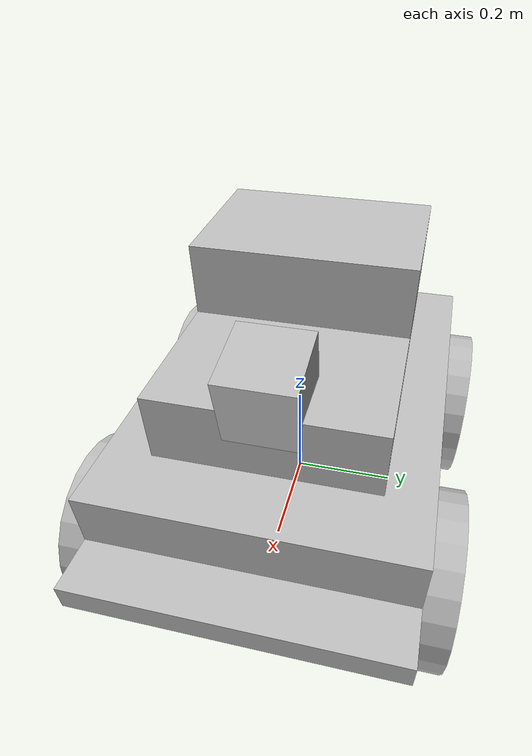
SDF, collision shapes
<?xml version='1.0' encoding='utf-8'?>
<sdf version="1.6">
    <model name="marble_husky_sensor_config_1">
        <link name="base_link">
            <pose frame="">0 0 0 0 -0 0</pose>
            <inertial>
                <pose frame="">-0.000543 -0.084945 0.062329 0 -0 0</pose>
                <mass>41.064</mass>
                <inertia>
                    <ixx>0.615397</ixx>
                    <ixy>-0.0240585</ixy>
                    <ixz>-0.120749</ixz>
                    <iyy>1.75388</iyy>
                    <iyz>-0.0028322</iyz>
                    <izz>2.03641</izz>
                </inertia>
            </inertial>
            <collision name="base_link_collision">
                <pose frame="">0 0 0.12 0 0 0</pose>
                <geometry>
                    <box>
                        <size>0.9874 0.5709 0.05</size>
                    </box>
                </geometry>
            </collision>
            <collision name="base_link_collision_bottom">
                <pose frame="">0 0 0.046 0 0 0</pose>
                <geometry>
                    <box>
                        <size>0.80 0.5709 0.095</size>
                    </box>
                </geometry>
            </collision>
            <collision name="base_link_collision_1">
                <pose frame="">0 0 0.185625 0 -0 0</pose>
                <geometry>
                    <box>
                        <size>0.78992 0.5709 0.12375</size>
                    </box>
                </geometry>
            </collision>
            <visual name="base_link_visual">
                <pose frame="">0 0 0 0 -0 0</pose>
                <geometry>
                    <mesh>
                        <scale>1 1 1</scale>
                        <uri>meshes/base_link.dae</uri>
                    </mesh>
                </geometry>
            </visual>
            <visual name="base_link_fixed_joint_lump__front_bumper_link_visual_3">
                <pose frame="">0.48 0 0.091 0 -0 0</pose>
                <geometry>
                    <mesh>
                        <scale>1 1 1</scale>
                        <uri>meshes/bumper.dae</uri>
                    </mesh>
                </geometry>
            </visual>
            <visual name="base_link_fixed_joint_lump__rear_bumper_link_visual_4">
                <pose frame="">-0.48 0 0.091 0 -0 3.14159</pose>
                <geometry>
                    <mesh>
                        <scale>1 1 1</scale>
                        <uri>meshes/bumper.dae</uri>
                    </mesh>
                </geometry>
            </visual>
            <visual name="base_link_fixed_joint_lump__top_chassis_link_visual_5">
                <pose frame="">0 0 0 0 -0 0</pose>
                <geometry>
                    <mesh>
                        <scale>1 1 1</scale>
                        <uri>meshes/top_chassis.dae</uri>
                    </mesh>
                </geometry>
            </visual>
            <velocity_decay/>
            <self_collide>0</self_collide>
            <enable_wind>0</enable_wind>
            <kinematic>0</kinematic>
        </link>
        <link name="sensor_rack">
            <inertial>
                <!-- Based on the CAD of the sensor rack (metal plates, ITEM tubes, sensors) -->
                <mass>10.40255</mass>
                <inertia>
                    <ixx>0.193</ixx>
                    <ixy>-0.0031</ixy>
                    <ixz>0.00912</ixz>
                    <iyy>0.301</iyy>
                    <iyz>0.00313</iyz>
                    <izz>0.35676</izz>
                </inertia>
                <pose frame="">0.28 0.2 0.06 0 -0 0</pose>
            </inertial>
            <pose frame="">-0.283 -0.198243 0.224 -1e-06 -0 -1.3e-05</pose>
            <self_collide>0</self_collide>
            <enable_wind>0</enable_wind>
            <kinematic>0</kinematic>
            <visual name="visual">
                <pose frame="">0 0 0 0 -0 0</pose>
                <geometry>
                    <mesh>
                        <uri>meshes/sensor_rack_lowres_shallow_laser.dae</uri>
                        <scale>1 1 1</scale>
                    </mesh>
                </geometry>
                <transparency>0</transparency>
                <cast_shadows>1</cast_shadows>
            </visual>
            <collision name="collision_base">
                <laser_retro>0</laser_retro>
                <max_contacts>10</max_contacts>
                <pose frame="">0.275 0.2 0.075 0 -0 0</pose>
                <geometry>
                    <box>
                        <size>0.56 0.4 0.15</size>
                    </box>
                </geometry>
                <surface>
                    <friction>
                        <ode>
                            <mu>1</mu>
                            <mu2>1</mu2>
                            <fdir1>0 0 0</fdir1>
                            <slip1>0</slip1>
                            <slip2>0</slip2>
                        </ode>
                    </friction>
                    <contact>
                        <collide_without_contact>0</collide_without_contact>
                        <collide_without_contact_bitmask>1</collide_without_contact_bitmask>
                        <collide_bitmask>1</collide_bitmask>
                        <ode>
                            <soft_cfm>0</soft_cfm>
                            <soft_erp>0.2</soft_erp>
                            <kp>1e+13</kp>
                            <kd>1</kd>
                            <max_vel>0.01</max_vel>
                            <min_depth>0</min_depth>
                        </ode>
                    </contact>
                </surface>
            </collision>
            <collision name="collision_top">
                <laser_retro>0</laser_retro>
                <max_contacts>10</max_contacts>
                <pose frame="">0.15 0.2 0.215 0 -0 0</pose>
                <geometry>
                    <box>
                        <size>0.28 0.4 0.13</size>
                    </box>
                </geometry>
                <surface>
                    <friction>
                        <ode>
                            <mu>1</mu>
                            <mu2>1</mu2>
                            <fdir1>0 0 0</fdir1>
                            <slip1>0</slip1>
                            <slip2>0</slip2>
                        </ode>
                    </friction>
                    <contact>
                        <collide_without_contact>0</collide_without_contact>
                        <collide_without_contact_bitmask>1</collide_without_contact_bitmask>
                        <collide_bitmask>1</collide_bitmask>
                        <ode>
                            <soft_cfm>0</soft_cfm>
                            <soft_erp>0.2</soft_erp>
                            <kp>1e+13</kp>
                            <kd>1</kd>
                            <max_vel>0.01</max_vel>
                            <min_depth>0</min_depth>
                        </ode>
                    </contact>
                </surface>
            </collision>
            <collision name="collision_laser">
                <laser_retro>0</laser_retro>
                <max_contacts>10</max_contacts>
                <pose frame="">0.505 0.2 0.17 0 0.17 0</pose>
                <geometry>
                    <box>
                        <size>0.135 0.13 0.13</size>
                    </box>
                </geometry>
                <surface>
                    <friction>
                        <ode>
                            <mu>1</mu>
                            <mu2>1</mu2>
                            <fdir1>0 0 0</fdir1>
                            <slip1>0</slip1>
                            <slip2>0</slip2>
                        </ode>
                    </friction>
                    <contact>
                        <collide_without_contact>0</collide_without_contact>
                        <collide_without_contact_bitmask>1</collide_without_contact_bitmask>
                        <collide_bitmask>1</collide_bitmask>
                        <ode>
                            <soft_cfm>0</soft_cfm>
                            <soft_erp>0.2</soft_erp>
                            <kp>1e+13</kp>
                            <kd>1</kd>
                            <max_vel>0.01</max_vel>
                            <min_depth>0</min_depth>
                        </ode>
                    </contact>
                </surface>
            </collision>
            <sensor name="imu_sensor" type="imu">
                <always_on>1</always_on>
                <update_rate>50</update_rate>
                <imu>
                    <enable_orientation>0</enable_orientation>
                    <angular_velocity>
                        <x>
                            <noise type="gaussian">
                                <mean>0</mean>
                                <stddev>0.009</stddev>
                                <bias_mean>0.00075</bias_mean>
                                <bias_stddev>0.005</bias_stddev>
                                <dynamic_bias_stddev>0.00002</dynamic_bias_stddev>
                                <dynamic_bias_correlation_time>400.0</dynamic_bias_correlation_time>
                                <precision>0.00025</precision>
                            </noise>
                        </x>
                        <y>
                            <noise type="gaussian">
                                <mean>0</mean>
                                <stddev>0.009</stddev>
                                <bias_mean>0.00075</bias_mean>
                                <bias_stddev>0.005</bias_stddev>
                                <dynamic_bias_stddev>0.00002</dynamic_bias_stddev>
                                <dynamic_bias_correlation_time>400.0</dynamic_bias_correlation_time>
                                <precision>0.00025</precision>
                            </noise>
                        </y>
                        <z>
                            <noise type="gaussian">
                                <mean>0</mean>
                                <stddev>0.009</stddev>
                                <bias_mean>0.00075</bias_mean>
                                <bias_stddev>0.005</bias_stddev>
                                <dynamic_bias_stddev>0.00002</dynamic_bias_stddev>
                                <dynamic_bias_correlation_time>400.0</dynamic_bias_correlation_time>
                                <precision>0.00025</precision>
                            </noise>
                        </z>
                    </angular_velocity>
                    <linear_acceleration>
                        <x>
                            <noise type="gaussian">
                                <mean>0</mean>
                                <stddev>0.021</stddev>
                                <bias_mean>0.05</bias_mean>
                                <bias_stddev>0.0075</bias_stddev>
                                <dynamic_bias_stddev>0.000375</dynamic_bias_stddev>
                                <dynamic_bias_correlation_time>175.0</dynamic_bias_correlation_time>
                                <precision>0.005</precision>
                            </noise>
                        </x>
                        <y>
                            <noise type="gaussian">
                                <mean>0</mean>
                                <stddev>0.021</stddev>
                                <bias_mean>0.05</bias_mean>
                                <bias_stddev>0.0075</bias_stddev>
                                <dynamic_bias_stddev>0.000375</dynamic_bias_stddev>
                                <dynamic_bias_correlation_time>175.0</dynamic_bias_correlation_time>
                                <precision>0.005</precision>
                            </noise>
                        </y>
                        <z>
                            <noise type="gaussian">
                                <mean>0</mean>
                                <stddev>0.021</stddev>
                                <bias_mean>0.05</bias_mean>
                                <bias_stddev>0.0075</bias_stddev>
                                <dynamic_bias_stddev>0.000375</dynamic_bias_stddev>
                                <dynamic_bias_correlation_time>175.0</dynamic_bias_correlation_time>
                                <precision>0.005</precision>
                            </noise>
                        </z>
                    </linear_acceleration>
                </imu>
            </sensor>
            <sensor name="camera_0" type="camera">
                <camera name="camera_0">
                    <horizontal_fov>1.50971</horizontal_fov>
                    <image>
                        <width>1920</width>
                        <height>1200</height>
                        <format>R8G8B8</format>
                    </image>
                    <clip>
                        <near>0.4</near>
                        <far>300</far>
                    </clip>
                    <noise>
                        <type>gaussian</type>
                        <mean>0</mean>
                        <stddev>0.007</stddev>
                    </noise>
                    <lens>
                        <intrinsics>
                            <fx>1020.51</fx>
                            <fy>1020.51</fy>
                            <cx>959.5</cx>
                            <cy>599.5</cy>
                            <s>0</s>
                        </intrinsics>
                        <type>stereographic</type>
                        <scale_to_hfov>1</scale_to_hfov>
                    </lens>
                </camera>
                <always_on>1</always_on>
                <update_rate>9</update_rate>
                <visualize>1</visualize>
                <pose frame="">0.34655 0.07561 0.08992 0 -0.26 -0.58</pose>
            </sensor>
            <sensor name="camera_1" type="camera">
                <camera name="camera_1">
                    <horizontal_fov>1.50971</horizontal_fov>
                    <image>
                        <width>1920</width>
                        <height>1200</height>
                        <format>R8G8B8</format>
                    </image>
                    <clip>
                        <near>0.4</near>
                        <far>300</far>
                    </clip>
                    <noise>
                        <type>gaussian</type>
                        <mean>0</mean>
                        <stddev>0.007</stddev>
                    </noise>
                    <lens>
                        <intrinsics>
                            <fx>1020.51</fx>
                            <fy>1020.51</fy>
                            <cx>959.5</cx>
                            <cy>599.5</cy>
                            <s>0</s>
                        </intrinsics>
                        <type>stereographic</type>
                        <scale_to_hfov>1</scale_to_hfov>
                    </lens>
                </camera>
                <always_on>1</always_on>
                <update_rate>9</update_rate>
                <visualize>1</visualize>
                <pose frame="">0.16082 0.10326 0.08992 0 -0.26 -1.88</pose>
            </sensor>
            <sensor name="camera_2" type="camera">
                <camera name="camera_2">
                    <horizontal_fov>1.50971</horizontal_fov>
                    <image>
                        <width>1920</width>
                        <height>1200</height>
                        <format>R8G8B8</format>
                    </image>
                    <clip>
                        <near>0.4</near>
                        <far>300</far>
                    </clip>
                    <noise>
                        <type>gaussian</type>
                        <mean>0</mean>
                        <stddev>0.007</stddev>
                    </noise>
                    <lens>
                        <intrinsics>
                            <fx>1020.51</fx>
                            <fy>1020.51</fy>
                            <cx>959.5</cx>
                            <cy>599.5</cy>
                            <s>0</s>
                        </intrinsics>
                        <type>stereographic</type>
                        <scale_to_hfov>1</scale_to_hfov>
                    </lens>
                </camera>
                <always_on>1</always_on>
                <update_rate>9</update_rate>
                <pose frame="">0.08658 0.2358 0.08992 0 -0.26 -3.14</pose>
                <visualize>1</visualize>
            </sensor>
            <sensor name="camera_3" type="camera">
                <camera name="camera_3">
                    <horizontal_fov>1.50971</horizontal_fov>
                    <image>
                        <width>1920</width>
                        <height>1200</height>
                        <format>R8G8B8</format>
                    </image>
                    <clip>
                        <near>0.4</near>
                        <far>300</far>
                    </clip>
                    <noise>
                        <type>gaussian</type>
                        <mean>0</mean>
                        <stddev>0.007</stddev>
                    </noise>
                    <lens>
                        <intrinsics>
                            <fx>1020.51</fx>
                            <fy>1020.51</fy>
                            <cx>959.5</cx>
                            <cy>599.5</cy>
                            <s>0</s>
                        </intrinsics>
                        <type>stereographic</type>
                        <scale_to_hfov>1</scale_to_hfov>
                    </lens>
                </camera>
                <always_on>1</always_on>
                <update_rate>9</update_rate>
                <pose frame="">0.22978 0.31824 0.08992 0 -0.26 1.88</pose>
                <visualize>1</visualize>
            </sensor>
            <sensor name="camera_4" type="camera">
                <camera name="camera_4">
                    <horizontal_fov>1.50971</horizontal_fov>
                    <image>
                        <width>1920</width>
                        <height>1200</height>
                        <format>R8G8B8</format>
                    </image>
                    <clip>
                        <near>0.4</near>
                        <far>300</far>
                    </clip>
                    <noise>
                        <type>gaussian</type>
                        <mean>0</mean>
                        <stddev>0.007</stddev>
                    </noise>
                    <lens>
                        <intrinsics>
                            <fx>1020.51</fx>
                            <fy>1020.51</fy>
                            <cx>959.5</cx>
                            <cy>599.5</cy>
                            <s>0</s>
                        </intrinsics>
                        <type>stereographic</type>
                        <scale_to_hfov>1</scale_to_hfov>
                    </lens>
                </camera>
                <always_on>1</always_on>
                <update_rate>9</update_rate>
                <pose frame="">0.38916 0.26483 0.08992 0 -0.26 0.58</pose>
                <visualize>1</visualize>
            </sensor>
            <sensor name="camera_5" type="camera">
                <camera name="camera_5">
                    <horizontal_fov>1.50971</horizontal_fov>
                    <image>
                        <width>1920</width>
                        <height>1200</height>
                        <format>R8G8B8</format>
                    </image>
                    <clip>
                        <near>0.4</near>
                        <far>300</far>
                    </clip>
                    <noise>
                        <type>gaussian</type>
                        <mean>0</mean>
                        <stddev>0.007</stddev>
                    </noise>
                    <lens>
                        <intrinsics>
                            <fx>1020.51</fx>
                            <fy>1020.51</fy>
                            <cx>959.5</cx>
                            <cy>599.5</cy>
                            <s>0</s>
                        </intrinsics>
                        <type>stereographic</type>
                        <scale_to_hfov>1</scale_to_hfov>
                    </lens>
                </camera>
                <always_on>1</always_on>
                <update_rate>9</update_rate>
                <pose frame="">0.16561 0.19955 0.20529 0 -1.57 0.0</pose>
                <visualize>1</visualize>
            </sensor>
            <sensor name="camera_realsense" type="rgbd_camera">
                <camera name="camera_realsense">
                    <horizontal_fov>1.5184</horizontal_fov>
                    <lens>
                        <intrinsics>
                            <fx>337.22195</fx>
                            <fy>337.22195</fy>
                            <cx>320.5</cx>
                            <cy>240.5</cy>
                            <s>0</s>
                        </intrinsics>
                    </lens>
                    <distortion>
                        <k1>0.0</k1>
                        <k2>0.0</k2>
                        <k3>0.0</k3>
                        <p1>0.0</p1>
                        <p2>0.0</p2>
                        <center>0.5 0.5</center>
                    </distortion>
                    <image>
                        <width>640</width>
                        <height>480</height>
                        <format>R8G8B8</format>
                    </image>
                    <clip>
                        <near>0.4</near>
                        <far>300</far>
                    </clip>
                    <depth_camera>
                        <clip>
                            <near>0.4</near>
                            <far>10</far>
                        </clip>
                    </depth_camera>
                    <noise>
                        <type>gaussian</type>
                        <mean>0</mean>
                        <stddev>0.007</stddev>
                    </noise>
                </camera>
                <always_on>1</always_on>
                <update_rate>30</update_rate>
                <pose frame="">0.01923 0.18205 0.200 0.0 0.35 -3.14</pose>
            </sensor>
            <!-- Robosense RS-LiDAR-16 or Leishen C16 Series -->
            <sensor name="front_lidar" type="gpu_lidar">
                <update_rate>10</update_rate>
                <visualize>1</visualize>
                <lidar>
                    <scan>
                        <horizontal>
                            <samples>1800</samples>
                            <resolution>1</resolution>
                            <min_angle>-3.141592</min_angle>
                            <max_angle>3.141592</max_angle>
                        </horizontal>
                        <vertical>
                            <samples>16</samples>
                            <resolution>1</resolution>
                            <min_angle>-0.26</min_angle>
                            <max_angle>0.26</max_angle>
                        </vertical>
                    </scan>
                    <range>
                        <min>0.2</min>
                        <max>150</max>
                        <resolution>0.01</resolution>
                    </range>
                    <noise>
                        <type>gaussian</type>
                        <mean>0</mean>
                        <stddev>0.01</stddev>
                    </noise>
                </lidar>
                <pose frame="">0.507 0.19955 0.20879 0 0.17 0</pose>
            </sensor>
            <light name="light_0" type="spot">
                <pose>0.40354 0.11441 0.09843 0 -1.83 -0.58</pose>
                <cast_shadows>1</cast_shadows>
                <attenuation>
                    <range>50</range>
                    <linear>0</linear>
                    <constant>0.1</constant>
                    <quadratic>0.0025</quadratic>
                </attenuation>
                <diffuse>0.5 0.5 0.4 1</diffuse>
                <specular>0.5 0.5 0.4 1</specular>
                <spot>
                    <inner_angle>1.4</inner_angle>
                    <!-- Matching the lens FOV -->
                    <outer_angle>1.5</outer_angle>
                    <falloff>1</falloff>
                </spot>
                <direction>0 0 -1</direction>
            </light>
            <light name="light_1" type="spot">
                <pose>0.21534 0.06105 0.09843 0 -1.83 -1.88</pose>
                <cast_shadows>1</cast_shadows>
                <attenuation>
                    <range>50</range>
                    <linear>0</linear>
                    <constant>0.1</constant>
                    <quadratic>0.0025</quadratic>
                </attenuation>
                <diffuse>0.5 0.5 0.4 1</diffuse>
                <specular>0.5 0.5 0.4 1</specular>
                <spot>
                    <inner_angle>1.4</inner_angle>
                    <outer_angle>1.5</outer_angle>
                    <falloff>1</falloff>
                </spot>
                <direction>0 0 -1</direction>
            </light>
            <light name="light_2" type="spot">
                <pose>0.06329 0.17091 0.09843 0 -1.83 -3.14</pose>
                <cast_shadows>1</cast_shadows>
                <attenuation>
                    <range>50</range>
                    <linear>0</linear>
                    <constant>0.1</constant>
                    <quadratic>0.0025</quadratic>
                </attenuation>
                <diffuse>0.5 0.5 0.4 1</diffuse>
                <specular>0.5 0.5 0.4 1</specular>
                <spot>
                    <inner_angle>1.4</inner_angle>
                    <outer_angle>1.5</outer_angle>
                    <falloff>1</falloff>
                </spot>
                <direction>0 0 -1</direction>
            </light>
            <light name="light_3" type="spot">
                <pose>0.16087 0.32035 0.09843 0 -1.83 1.88</pose>
                <cast_shadows>1</cast_shadows>
                <attenuation>
                    <range>50</range>
                    <linear>0</linear>
                    <constant>0.1</constant>
                    <quadratic>0.0025</quadratic>
                </attenuation>
                <diffuse>0.5 0.5 0.4 1</diffuse>
                <specular>0.5 0.5 0.4 1</specular>
                <spot>
                    <inner_angle>1.4</inner_angle>
                    <outer_angle>1.5</outer_angle>
                    <falloff>1</falloff>
                </spot>
                <direction>0 0 -1</direction>
            </light>
            <light name="light_4" type="spot">
                <pose>0.36987 0.33102 0.09843 0 -1.83 0.58</pose>
                <cast_shadows>1</cast_shadows>
                <attenuation>
                    <range>50</range>
                    <linear>0</linear>
                    <constant>0.1</constant>
                    <quadratic>0.0025</quadratic>
                </attenuation>
                <diffuse>0.5 0.5 0.4 1</diffuse>
                <specular>0.5 0.5 0.4 1</specular>
                <spot>
                    <inner_angle>1.4</inner_angle>
                    <outer_angle>1.5</outer_angle>
                    <falloff>1</falloff>
                </spot>
                <direction>0 0 -1</direction>
            </light>
            <light name="light_5" type="spot">
                <pose>0.22561 0.19955 0.22567 0 3.14 0</pose>
                <cast_shadows>1</cast_shadows>
                <attenuation>
                    <range>50</range>
                    <linear>0</linear>
                    <constant>0.1</constant>
                    <quadratic>0.0025</quadratic>
                </attenuation>
                <diffuse>0.5 0.5 0.4 1</diffuse>
                <specular>0.5 0.5 0.4 1</specular>
                <spot>
                    <inner_angle>1.4</inner_angle>
                    <outer_angle>1.5</outer_angle>
                    <falloff>1</falloff>
                </spot>
                <direction>0 0 -1</direction>
            </light>
            <light name="light_front_right" type="spot">
                <pose>0.28511 0.08955 0.19767 0 -1.570 0</pose>
                <cast_shadows>1</cast_shadows>
                <attenuation>
                    <range>50</range>
                    <linear>0</linear>
                    <constant>0.1</constant>
                    <quadratic>0.0025</quadratic>
                </attenuation>
                <diffuse>0.5 0.5 0.4 1</diffuse>
                <specular>0.5 0.5 0.4 1</specular>
                <spot>
                    <inner_angle>1.4</inner_angle>
                    <outer_angle>1.5</outer_angle>
                    <falloff>1</falloff>
                </spot>
                <direction>0 0 -1</direction>
            </light>
            <light name="light_front_left" type="spot">
                <pose>0.28511 0.30955 0.19767 0 -1.570 0</pose>
                <cast_shadows>1</cast_shadows>
                <attenuation>
                    <range>50</range>
                    <linear>0</linear>
                    <constant>0.1</constant>
                    <quadratic>0.0025</quadratic>
                </attenuation>
                <diffuse>0.5 0.5 0.4 1</diffuse>
                <specular>0.5 0.5 0.4 1</specular>
                <spot>
                    <inner_angle>1.4</inner_angle>
                    <outer_angle>1.5</outer_angle>
                    <falloff>1</falloff>
                </spot>
                <direction>0 0 -1</direction>
            </light>
        </link>
        <joint name="base_link_JOINT_0" type="fixed">
            <parent>base_link</parent>
            <child>sensor_rack</child>
            <pose frame="">0 0 0 0 -0 0</pose>
            <physics>
                <ode>
                    <limit>
                        <cfm>0</cfm>
                        <erp>0.2</erp>
                    </limit>
                    <suspension>
                        <cfm>0</cfm>
                        <erp>0.2</erp>
                    </suspension>
                </ode>
            </physics>
        </joint>
        <link name="front_left_wheel_link">
            <pose frame="">0.256 0.2854 0.03282 0 -0 0</pose>
            <inertial>
                <pose frame="">0 0 0 0 -0 0</pose>
                <mass>2.637</mass>
                <inertia>
                    <ixx>0.02467</ixx>
                    <ixy>0</ixy>
                    <ixz>0</ixz>
                    <iyy>0.04411</iyy>
                    <iyz>0</iyz>
                    <izz>0.02467</izz>
                </inertia>
            </inertial>
            <collision name="front_left_wheel_link_collision">
                <pose frame="">0 0 0 1.5707963267948966 -0 0</pose>
                <geometry>
                    <cylinder>
                        <length>0.1143</length>
                        <radius>0.1651</radius>
                    </cylinder>
                </geometry>
                <surface>
                    <contact>
                        <ode>
                            <kp>1e+07</kp>
                            <kd>1</kd>
                        </ode>
                    </contact>
                    <friction>
                        <ode>
                            <mu>0.5</mu>
                            <mu2>1</mu2>
                            <slip1>0.00062</slip1>
                            <slip2>0</slip2>
                            <fdir1>0 0 1</fdir1>
                        </ode>
                    </friction>
                </surface>
            </collision>
            <visual name="front_left_wheel_link_visual">
                <pose frame="">0 0 0 0 -0 0</pose>
                <geometry>
                    <mesh>
                        <scale>1 1 1</scale>
                        <uri>meshes/wheel.dae</uri>
                    </mesh>
                </geometry>
            </visual>
            <gravity>1</gravity>
            <velocity_decay/>
        </link>
        <joint name="front_left_wheel_joint" type="revolute">
            <child>front_left_wheel_link</child>
            <parent>base_link</parent>
            <axis>
                <xyz>0 1 0</xyz>
                <limit>
                    <lower>-1e+16</lower>
                    <upper>1e+16</upper>
                </limit>
                <dynamics>
                    <spring_reference>0</spring_reference>
                    <spring_stiffness>0</spring_stiffness>
                </dynamics>
                <use_parent_model_frame>1</use_parent_model_frame>
            </axis>
        </joint>
        <link name="front_right_wheel_link">
            <pose frame="">0.256 -0.2854 0.03282 0 -0 0</pose>
            <inertial>
                <pose frame="">0 0 0 0 -0 0</pose>
                <mass>2.637</mass>
                <inertia>
                    <ixx>0.02467</ixx>
                    <ixy>0</ixy>
                    <ixz>0</ixz>
                    <iyy>0.04411</iyy>
                    <iyz>0</iyz>
                    <izz>0.02467</izz>
                </inertia>
            </inertial>
            <collision name="front_right_wheel_link_collision">
                <pose frame="">0 0 0 1.5707963267948966 -0 0</pose>
                <geometry>
                    <cylinder>
                        <length>0.1143</length>
                        <radius>0.1651</radius>
                    </cylinder>
                </geometry>
                <surface>
                    <contact>
                        <ode>
                            <kp>1e+07</kp>
                            <kd>1</kd>
                        </ode>
                    </contact>
                    <friction>
                        <ode>
                            <mu>0.5</mu>
                            <mu2>1</mu2>
                            <slip1>0.00062</slip1>
                            <slip2>0</slip2>
                            <fdir1>0 0 1</fdir1>
                        </ode>
                    </friction>
                </surface>
            </collision>
            <visual name="front_right_wheel_link_visual">
                <pose frame="">0 0 0 0 -0 0</pose>
                <geometry>
                    <mesh>
                        <scale>1 1 1</scale>
                        <uri>meshes/wheel.dae</uri>
                    </mesh>
                </geometry>
            </visual>
            <gravity>1</gravity>
            <velocity_decay/>
        </link>
        <joint name="front_right_wheel_joint" type="revolute">
            <child>front_right_wheel_link</child>
            <parent>base_link</parent>
            <axis>
                <xyz>0 1 0</xyz>
                <limit>
                    <lower>-1e+16</lower>
                    <upper>1e+16</upper>
                </limit>
                <dynamics>
                    <spring_reference>0</spring_reference>
                    <spring_stiffness>0</spring_stiffness>
                </dynamics>
                <use_parent_model_frame>1</use_parent_model_frame>
            </axis>
        </joint>
        <link name="rear_left_wheel_link">
            <pose frame="">-0.256 0.2854 0.03282 0 -0 0</pose>
            <inertial>
                <pose frame="">0 0 0 0 -0 0</pose>
                <mass>2.637</mass>
                <inertia>
                    <ixx>0.02467</ixx>
                    <ixy>0</ixy>
                    <ixz>0</ixz>
                    <iyy>0.04411</iyy>
                    <iyz>0</iyz>
                    <izz>0.02467</izz>
                </inertia>
            </inertial>
            <collision name="rear_left_wheel_link_collision">
                <pose frame="">0 0 0 1.5707963267948966 -0 0</pose>
                <geometry>
                    <cylinder>
                        <length>0.1143</length>
                        <radius>0.1651</radius>
                    </cylinder>
                </geometry>
                <surface>
                    <contact>
                        <ode>
                            <kp>1e+07</kp>
                            <kd>1</kd>
                        </ode>
                    </contact>
                    <friction>
                        <ode>
                            <mu>0.5</mu>
                            <mu2>1</mu2>
                            <slip1>0.00062</slip1>
                            <slip2>0</slip2>
                            <fdir1>0 0 1</fdir1>
                        </ode>
                    </friction>
                </surface>
            </collision>
            <visual name="rear_left_wheel_link_visual">
                <pose frame="">0 0 0 0 -0 0</pose>
                <geometry>
                    <mesh>
                        <scale>1 1 1</scale>
                        <uri>meshes/wheel.dae</uri>
                    </mesh>
                </geometry>
            </visual>
            <gravity>1</gravity>
            <velocity_decay/>
        </link>
        <joint name="rear_left_wheel_joint" type="revolute">
            <child>rear_left_wheel_link</child>
            <parent>base_link</parent>
            <axis>
                <xyz>0 1 0</xyz>
                <limit>
                    <lower>-1e+16</lower>
                    <upper>1e+16</upper>
                </limit>
                <dynamics>
                    <spring_reference>0</spring_reference>
                    <spring_stiffness>0</spring_stiffness>
                </dynamics>
                <use_parent_model_frame>1</use_parent_model_frame>
            </axis>
        </joint>
        <link name="rear_right_wheel_link">
            <pose frame="">-0.256 -0.2854 0.03282 0 -0 0</pose>
            <inertial>
                <pose frame="">0 0 0 0 -0 0</pose>
                <mass>2.637</mass>
                <inertia>
                    <ixx>0.02467</ixx>
                    <ixy>0</ixy>
                    <ixz>0</ixz>
                    <iyy>0.04411</iyy>
                    <iyz>0</iyz>
                    <izz>0.02467</izz>
                </inertia>
            </inertial>
            <collision name="rear_right_wheel_link_collision">
                <pose frame="">0 0 0 1.5707963267948966 -0 0</pose>
                <geometry>
                    <cylinder>
                        <length>0.1143</length>
                        <radius>0.1651</radius>
                    </cylinder>
                </geometry>
                <surface>
                    <contact>
                        <ode>
                            <kp>1e+07</kp>
                            <kd>1</kd>
                        </ode>
                    </contact>
                    <friction>
                        <ode>
                            <mu>0.5</mu>
                            <mu2>1</mu2>
                            <slip1>0.00062</slip1>
                            <slip2>0</slip2>
                            <fdir1>0 0 1</fdir1>
                        </ode>
                    </friction>
                </surface>
            </collision>
            <visual name="rear_right_wheel_link_visual">
                <pose frame="">0 0 0 0 -0 0</pose>
                <geometry>
                    <mesh>
                        <scale>1 1 1</scale>
                        <uri>meshes/wheel.dae</uri>
                    </mesh>
                </geometry>
            </visual>
            <gravity>1</gravity>
            <velocity_decay/>
        </link>
        <joint name="rear_right_wheel_joint" type="revolute">
            <child>rear_right_wheel_link</child>
            <parent>base_link</parent>
            <axis>
                <xyz>0 1 0</xyz>
                <limit>
                    <lower>-1e+16</lower>
                    <upper>1e+16</upper>
                </limit>
                <dynamics>
                    <spring_reference>0</spring_reference>
                    <spring_stiffness>0</spring_stiffness>
                </dynamics>
                <use_parent_model_frame>1</use_parent_model_frame>
            </axis>
        </joint>
        <static>0</static>
    </model>
</sdf>
